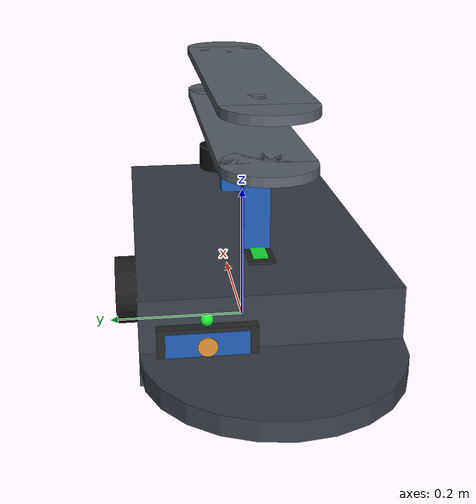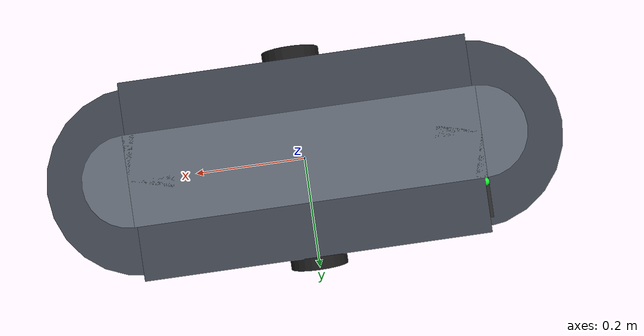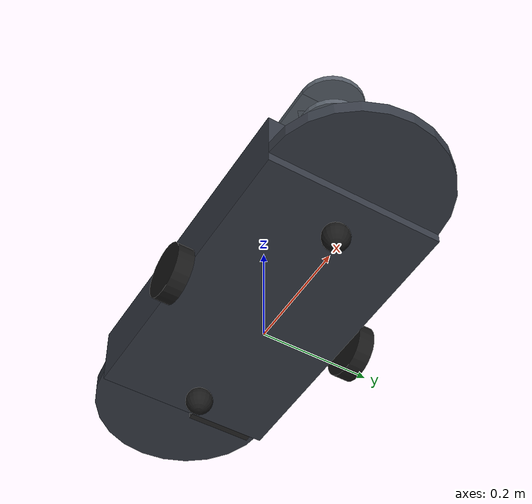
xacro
<?xml version="1.0"?>
<robot xmlns:xacro="http://www.ros.org/wiki/xacro" name="raia_amr">

    <!-- Fichiers de définition du robot AMR (Projet RAIA 01.26 - Fig. 26) -->
    <xacro:include filename="materials.xacro"/>
    <xacro:include filename="robot_core.xacro"/>
    <xacro:include filename="gazebo_control.xacro"/>
    <xacro:include filename="lidar.xacro"/>
    <xacro:include filename="camera.xacro"/>

</robot>

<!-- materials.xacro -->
<robot xmlns:xacro="http://www.ros.org/wiki/xacro">

    <material name="chassis_grey">
        <color rgba="0.22 0.24 0.28 1.0"/>
    </material>

    <material name="accent_blue">
        <color rgba="0.12 0.35 0.70 1.0"/>
    </material>

    <material name="rack_metal">
        <color rgba="0.35 0.38 0.42 1.0"/>
    </material>

    <material name="wheel_black">
        <color rgba="0.10 0.10 0.10 1.0"/>
    </material>

    <material name="lidar_black">
        <color rgba="0.05 0.05 0.05 1.0"/>
    </material>

    <material name="lens_red">
        <color rgba="0.85 0.10 0.10 1.0"/>
    </material>

    <material name="camera_blue">
        <color rgba="0.10 0.50 0.85 1.0"/>
    </material>

    <!-- Matériaux zone de recharge AMR -->
    <material name="charging_copper">
        <color rgba="0.85 0.55 0.20 1.0"/>
    </material>

    <material name="charging_green">
        <color rgba="0.10 0.90 0.20 1.0"/>
    </material>

    <material name="charging_pad_black">
        <color rgba="0.15 0.15 0.15 1.0"/>
    </material>

</robot>

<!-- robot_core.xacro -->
<robot xmlns:xacro="http://www.ros.org/wiki/xacro">

    <xacro:include filename="inertial_macros.xacro"/>

    <!-- ==================== BASE FOOTPRINT ==================== -->
    <link name="base_footprint"/>

    <joint name="base_joint" type="fixed">
        <parent link="base_footprint"/>
        <child link="base_link"/>
        <origin xyz="0 0 0.05" rpy="0 0 0"/>
    </joint>

    <!-- ==================== CHASSIS PRINCIPAL (BASE LINK) ==================== -->
    <link name="base_link">
        <!-- Corps rectangulaire principal -->
        <visual>
            <origin xyz="0 0 0.055" rpy="0 0 0"/>
            <geometry>
                <box size="0.56 0.32 0.11"/>
            </geometry>
            <material name="chassis_grey"/>
        </visual>
        <collision>
            <origin xyz="0 0 0.055" rpy="0 0 0"/>
            <geometry>
                <box size="0.56 0.32 0.11"/>
            </geometry>
        </collision>

        <!-- Rebord / Pare-chocs avant arrondi (comme sur la Fig. 26) -->
        <visual>
            <origin xyz="0.28 0 0.03" rpy="0 0 0"/>
            <geometry>
                <cylinder radius="0.16" length="0.025"/>
            </geometry>
            <material name="chassis_grey"/>
        </visual>
        <collision>
            <origin xyz="0.28 0 0.03" rpy="0 0 0"/>
            <geometry>
                <cylinder radius="0.16" length="0.025"/>
            </geometry>
        </collision>

        <!-- Rebord / Pare-chocs arrière arrondi (comme sur la Fig. 26) -->
        <visual>
            <origin xyz="-0.28 0 0.03" rpy="0 0 0"/>
            <geometry>
                <cylinder radius="0.16" length="0.025"/>
            </geometry>
            <material name="chassis_grey"/>
        </visual>
        <collision>
            <origin xyz="-0.28 0 0.03" rpy="0 0 0"/>
            <geometry>
                <cylinder radius="0.16" length="0.025"/>
            </geometry>
        </collision>

        <!-- ==================== ZONE DE RECHARGE EMBARQUÉE (INTERFACE COMPATIBLE MiR CHARGE) ==================== -->
        <!-- Boîtier récepteur de recharge automatique arrière (Centré sur les broches du MiR Charge) -->
        <visual name="charging_interface_housing">
            <origin xyz="-0.285 0.08 0.04" rpy="0 0 0"/>
            <geometry>
                <box size="0.018 0.12 0.075"/>
            </geometry>
            <material name="charging_pad_black"/>
        </visual>

        <!-- Rainure de guidage en V / Chanfrein de centrage mécanique -->
        <visual name="charging_guide_funnel">
            <origin xyz="-0.292 0.08 0.04" rpy="0 0 0"/>
            <geometry>
                <box size="0.006 0.10 0.065"/>
            </geometry>
            <material name="accent_blue"/>
        </visual>

        <!-- Plot récepteur femelle Supérieur (Liaison broche 24V DC + du MiR Charge) -->
        <visual name="charging_contact_upper">
            <origin xyz="-0.293 0.08 0.055" rpy="0 1.5708 0"/>
            <geometry>
                <cylinder radius="0.012" length="0.008"/>
            </geometry>
            <material name="charging_copper"/>
        </visual>

        <!-- Plot récepteur femelle Inférieur (Liaison broche Masse GND - du MiR Charge) -->
        <visual name="charging_contact_lower">
            <origin xyz="-0.293 0.08 0.025" rpy="0 1.5708 0"/>
            <geometry>
                <cylinder radius="0.012" length="0.008"/>
            </geometry>
            <material name="charging_copper"/>
        </visual>

        <!-- Voyant LED d'état de charge de la batterie (Vert fixe = 100% / Prêt) -->
        <visual name="charging_status_led">
            <origin xyz="-0.285 0.08 0.085" rpy="0 0 0"/>
            <geometry>
                <sphere radius="0.008"/>
            </geometry>
            <material name="charging_green"/>
        </visual>

        <!-- Jauge visuelle de batterie embarquée (Afficheur LED 5 barres sur capot supérieur) -->
        <visual name="battery_gauge_display">
            <origin xyz="-0.15 0 0.112" rpy="0 0 0"/>
            <geometry>
                <box size="0.08 0.035 0.004"/>
            </geometry>
            <material name="charging_pad_black"/>
        </visual>
        <visual name="battery_gauge_leds">
            <origin xyz="-0.15 0 0.115" rpy="0 0 0"/>
            <geometry>
                <box size="0.06 0.02 0.002"/>
            </geometry>
            <material name="charging_green"/>
        </visual>

        <!-- Plaque de contact de charge inférieure (Option recharge par le sol) -->
        <visual name="charging_ground_contact_pad">
            <origin xyz="0 0 0.005" rpy="0 0 0"/>
            <geometry>
                <box size="0.14 0.18 0.003"/>
            </geometry>
            <material name="charging_copper"/>
        </visual>

        <!-- Pilier vertical Avant -->
        <visual>
            <origin xyz="0.13 0 0.18" rpy="0 0 0"/>
            <geometry>
                <box size="0.03 0.035 0.14"/>
            </geometry>
            <material name="accent_blue"/>
        </visual>
        <collision>
            <origin xyz="0.13 0 0.18" rpy="0 0 0"/>
            <geometry>
                <box size="0.03 0.035 0.14"/>
            </geometry>
        </collision>

        <!-- Pilier vertical Arrière -->
        <visual>
            <origin xyz="-0.13 0 0.18" rpy="0 0 0"/>
            <geometry>
                <box size="0.03 0.035 0.14"/>
            </geometry>
            <material name="accent_blue"/>
        </visual>
        <collision>
            <origin xyz="-0.13 0 0.18" rpy="0 0 0"/>
            <geometry>
                <box size="0.03 0.035 0.14"/>
            </geometry>
        </collision>

        <!-- Plateau Inférieur Support PCB (Shelf 1) -->
        <visual>
            <origin xyz="0 0 0.25" rpy="0 0 0"/>
            <geometry>
                <box size="0.46 0.12 0.012"/>
            </geometry>
            <material name="rack_metal"/>
        </visual>
        <collision>
            <origin xyz="0 0 0.25" rpy="0 0 0"/>
            <geometry>
                <box size="0.46 0.12 0.012"/>
            </geometry>
        </collision>

        <!-- Extrémités arrondies Plateau 1 -->
        <visual>
            <origin xyz="0.23 0 0.25" rpy="0 0 0"/>
            <geometry>
                <cylinder radius="0.06" length="0.012"/>
            </geometry>
            <material name="rack_metal"/>
        </visual>
        <visual>
            <origin xyz="-0.23 0 0.25" rpy="0 0 0"/>
            <geometry>
                <cylinder radius="0.06" length="0.012"/>
            </geometry>
            <material name="rack_metal"/>
        </visual>

        <!-- Plateau Supérieur Support PCB (Shelf 2) -->
        <visual>
            <origin xyz="0 0 0.32" rpy="0 0 0"/>
            <geometry>
                <box size="0.46 0.12 0.012"/>
            </geometry>
            <material name="rack_metal"/>
        </visual>
        <collision>
            <origin xyz="0 0 0.32" rpy="0 0 0"/>
            <geometry>
                <box size="0.46 0.12 0.012"/>
            </geometry>
        </collision>

        <!-- Extrémités arrondies Plateau 2 -->
        <visual>
            <origin xyz="0.23 0 0.32" rpy="0 0 0"/>
            <geometry>
                <cylinder radius="0.06" length="0.012"/>
            </geometry>
            <material name="rack_metal"/>
        </visual>
        <visual>
            <origin xyz="-0.23 0 0.32" rpy="0 0 0"/>
            <geometry>
                <cylinder radius="0.06" length="0.012"/>
            </geometry>
            <material name="rack_metal"/>
        </visual>

        <xacro:inertial_box mass="8.5" x="0.56" y="0.32" z="0.33">
            <origin xyz="0 0 0.10" rpy="0 0 0"/>
        </xacro:inertial_box>
    </link>

    <gazebo reference="base_link">
        <material>Gazebo/DarkGrey</material>
    </gazebo>

    <!-- ==================== ROUE MOTRICE GAUCHE ==================== -->
    <joint name="left_wheel_joint" type="continuous">
        <parent link="base_link"/>
        <child link="left_wheel_link"/>
        <origin xyz="0 0.175 0" rpy="-${pi/2} 0 0"/>
        <axis xyz="0 0 1"/>
    </joint>

    <link name="left_wheel_link">
        <visual>
            <geometry>
                <cylinder radius="0.05" length="0.03"/>
            </geometry>
            <material name="wheel_black"/>
        </visual>
        <collision>
            <geometry>
                <cylinder radius="0.05" length="0.03"/>
            </geometry>
        </collision>
        <xacro:inertial_cylinder mass="0.45" length="0.03" radius="0.05">
            <origin xyz="0 0 0" rpy="0 0 0"/>
        </xacro:inertial_cylinder>
    </link>

    <gazebo reference="left_wheel_link">
        <material>Gazebo/FlatBlack</material>
        <mu1>1.2</mu1>
        <mu2>1.2</mu2>
        <fdir1>1 0 0</fdir1>
        <kp>1000000.0</kp>
        <kd>1.0</kd>
        <minDepth>0.001</minDepth>
    </gazebo>

    <!-- ==================== ROUE MOTRICE DROITE ==================== -->
    <joint name="right_wheel_joint" type="continuous">
        <parent link="base_link"/>
        <child link="right_wheel_link"/>
        <origin xyz="0 -0.175 0" rpy="${pi/2} 0 0"/>
        <axis xyz="0 0 -1"/>
    </joint>

    <link name="right_wheel_link">
        <visual>
            <geometry>
                <cylinder radius="0.05" length="0.03"/>
            </geometry>
            <material name="wheel_black"/>
        </visual>
        <collision>
            <geometry>
                <cylinder radius="0.05" length="0.03"/>
            </geometry>
        </collision>
        <xacro:inertial_cylinder mass="0.45" length="0.03" radius="0.05">
            <origin xyz="0 0 0" rpy="0 0 0"/>
        </xacro:inertial_cylinder>
    </link>

    <gazebo reference="right_wheel_link">
        <material>Gazebo/FlatBlack</material>
        <mu1>1.2</mu1>
        <mu2>1.2</mu2>
        <fdir1>1 0 0</fdir1>
        <kp>1000000.0</kp>
        <kd>1.0</kd>
        <minDepth>0.001</minDepth>
    </gazebo>

    <!-- ==================== ROUE LIBRE AVANT (CASTER) ==================== -->
    <joint name="front_caster_joint" type="fixed">
        <parent link="base_link"/>
        <child link="front_caster_link"/>
        <origin xyz="0.22 0 -0.025"/>
    </joint>

    <link name="front_caster_link">
        <visual>
            <geometry>
                <sphere radius="0.0245"/>
            </geometry>
            <material name="wheel_black"/>
        </visual>
        <collision>
            <geometry>
                <sphere radius="0.0245"/>
            </geometry>
        </collision>
        <xacro:inertial_sphere mass="0.20" radius="0.0245">
            <origin xyz="0 0 0" rpy="0 0 0"/>
        </xacro:inertial_sphere>
    </link>

    <gazebo reference="front_caster_link">
        <material>Gazebo/FlatBlack</material>
        <mu1>0.0001</mu1>
        <mu2>0.0001</mu2>
        <kp>100000.0</kp>
        <kd>1.0</kd>
        <minDepth>0.001</minDepth>
    </gazebo>

    <!-- ==================== ROUE LIBRE ARRIÈRE (CASTER) ==================== -->
    <joint name="rear_caster_joint" type="fixed">
        <parent link="base_link"/>
        <child link="rear_caster_link"/>
        <origin xyz="-0.22 0 -0.025"/>
    </joint>

    <link name="rear_caster_link">
        <visual>
            <geometry>
                <sphere radius="0.0245"/>
            </geometry>
            <material name="wheel_black"/>
        </visual>
        <collision>
            <geometry>
                <sphere radius="0.0245"/>
            </geometry>
        </collision>
        <xacro:inertial_sphere mass="0.20" radius="0.0245">
            <origin xyz="0 0 0" rpy="0 0 0"/>
        </xacro:inertial_sphere>
    </link>

    <gazebo reference="rear_caster_link">
        <material>Gazebo/FlatBlack</material>
        <mu1>0.0001</mu1>
        <mu2>0.0001</mu2>
        <kp>100000.0</kp>
        <kd>1.0</kd>
        <minDepth>0.001</minDepth>
    </gazebo>

</robot>

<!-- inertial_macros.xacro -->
<robot xmlns:xacro="http://www.ros.org/wiki/xacro">

    <!-- Macro d'inertie pour un parallélépipède (Box) -->
    <xacro:macro name="inertial_box" params="mass x y z *origin">
        <inertial>
            <xacro:insert_block name="origin"/>
            <mass value="${mass}"/>
            <inertia ixx="${(1/12) * mass * (y*y + z*z)}" ixy="0.0" ixz="0.0"
                     iyy="${(1/12) * mass * (x*x + z*z)}" iyz="0.0"
                     izz="${(1/12) * mass * (x*x + y*y)}"/>
        </inertial>
    </xacro:macro>

    <!-- Macro d'inertie pour un cylindre -->
    <xacro:macro name="inertial_cylinder" params="mass length radius *origin">
        <inertial>
            <xacro:insert_block name="origin"/>
            <mass value="${mass}"/>
            <inertia ixx="${(1/12) * mass * (3*radius*radius + length*length)}" ixy="0.0" ixz="0.0"
                     iyy="${(1/12) * mass * (3*radius*radius + length*length)}" iyz="0.0"
                     izz="${(1/2) * mass * (radius*radius)}"/>
        </inertial>
    </xacro:macro>

    <!-- Macro d'inertie pour une sphère -->
    <xacro:macro name="inertial_sphere" params="mass radius *origin">
        <inertial>
            <xacro:insert_block name="origin"/>
            <mass value="${mass}"/>
            <inertia ixx="${(2/5) * mass * (radius*radius)}" ixy="0.0" ixz="0.0"
                     iyy="${(2/5) * mass * (radius*radius)}" iyz="0.0"
                     izz="${(2/5) * mass * (radius*radius)}"/>
        </inertial>
    </xacro:macro>

</robot>

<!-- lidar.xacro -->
<robot xmlns:xacro="http://www.ros.org/wiki/xacro">

    <!-- ==================== CAPTEUR LIDAR 2D ==================== -->
    <joint name="laser_joint" type="fixed">
        <parent link="base_link"/>
        <child link="laser_frame"/>
        <origin xyz="0.26 0 0.13" rpy="0 0 0"/>
    </joint>

    <link name="laser_frame">
        <visual>
            <geometry>
                <cylinder radius="0.04" length="0.04"/>
            </geometry>
            <material name="lidar_black"/>
        </visual>
        <collision>
            <geometry>
                <cylinder radius="0.04" length="0.04"/>
            </geometry>
        </collision>
        <xacro:inertial_cylinder mass="0.15" length="0.04" radius="0.04">
            <origin xyz="0 0 0" rpy="0 0 0"/>
        </xacro:inertial_cylinder>
    </link>

    <gazebo reference="laser_frame">
        <material>Gazebo/Black</material>
        <sensor name="laser" type="ray">
            <pose>0 0 0 0 0 0</pose>
            <visualize>true</visualize>
            <update_rate>10.0</update_rate>
            <ray>
                <scan>
                    <horizontal>
                        <samples>360</samples>
                        <resolution>1</resolution>
                        <min_angle>-3.14159</min_angle>
                        <max_angle>3.14159</max_angle>
                    </horizontal>
                </scan>
                <range>
                    <min>0.15</min>
                    <max>12.0</max>
                    <resolution>0.01</resolution>
                </range>
            </ray>
            <plugin name="laser_controller" filename="libgazebo_ros_ray_sensor.so">
                <ros>
                    <remapping>~/out:=scan</remapping>
                </ros>
                <output_type>sensor_msgs/LaserScan</output_type>
                <frame_name>laser_frame</frame_name>
            </plugin>
        </sensor>
    </gazebo>

</robot>

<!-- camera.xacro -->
<robot xmlns:xacro="http://www.ros.org/wiki/xacro">

    <!-- ==================== CAMÉRA POUR INSPECTION PCB (YOLOv8) ==================== -->
    <joint name="camera_joint" type="fixed">
        <parent link="base_link"/>
        <child link="camera_link"/>
        <origin xyz="0.16 0 0.22" rpy="0 0 0"/>
    </joint>

    <link name="camera_link">
        <visual>
            <geometry>
                <box size="0.025 0.04 0.025"/>
            </geometry>
            <material name="camera_blue"/>
        </visual>
        <collision>
            <geometry>
                <box size="0.025 0.04 0.025"/>
            </geometry>
        </collision>
        <xacro:inertial_box mass="0.05" x="0.025" y="0.04" z="0.025">
            <origin xyz="0 0 0" rpy="0 0 0"/>
        </xacro:inertial_box>
    </link>

    <!-- Repère optique standard ROS (Z avant, X droite, Y bas) -->
    <joint name="camera_optical_joint" type="fixed">
        <parent link="camera_link"/>
        <child link="camera_optical_link"/>
        <origin xyz="0 0 0" rpy="${-pi/2} 0 ${-pi/2}"/>
    </joint>

    <link name="camera_optical_link"/>

    <gazebo reference="camera_link">
        <material>Gazebo/Blue</material>
        <sensor name="camera" type="camera">
            <pose>0 0 0 0 0 0</pose>
            <visualize>false</visualize>
            <update_rate>5.0</update_rate>
            <camera>
                <horizontal_fov>1.085</horizontal_fov>
                <image>
                    <format>R8G8B8</format>
                    <width>320</width>
                    <height>240</height>
                </image>
                <clip>
                    <near>0.05</near>
                    <far>8.0</far>
                </clip>
            </camera>
            <plugin name="camera_controller" filename="libgazebo_ros_camera.so">
                <frame_name>camera_optical_link</frame_name>
            </plugin>
        </sensor>
    </gazebo>

</robot>
